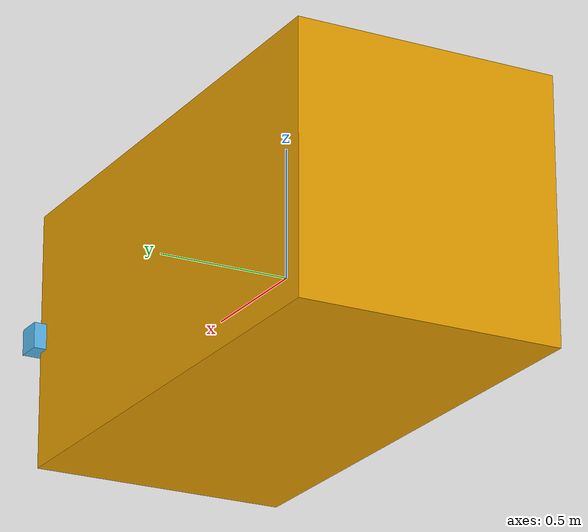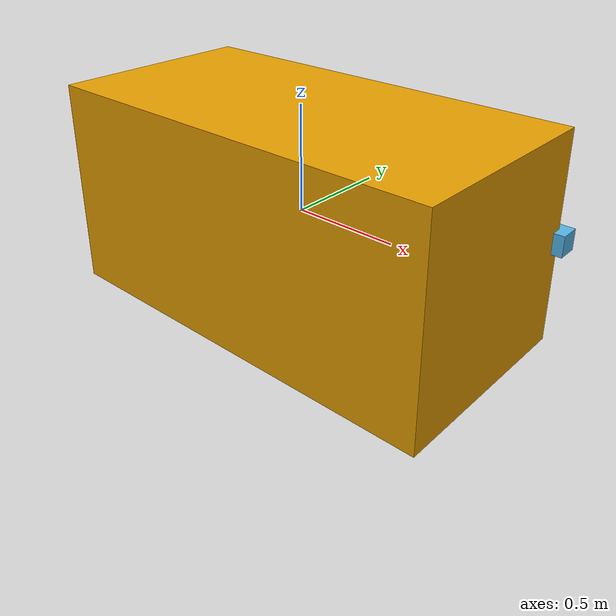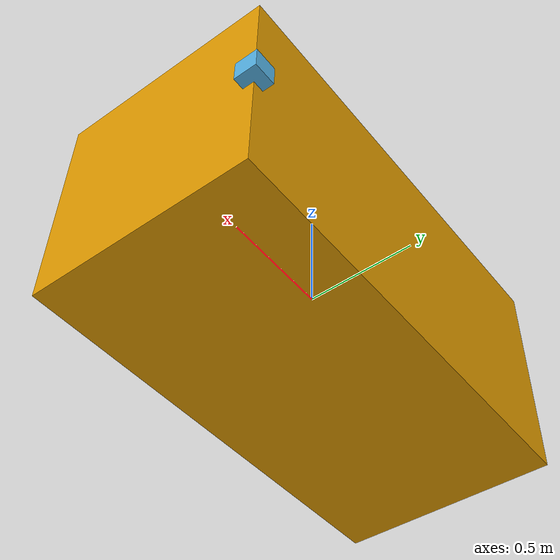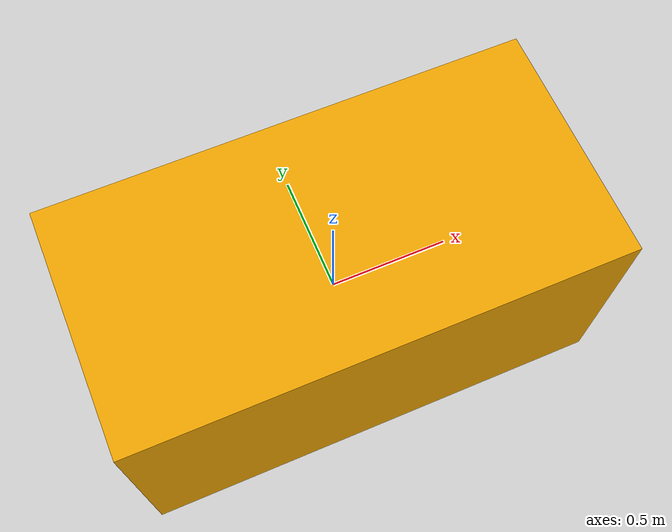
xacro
<?xml version="1.0"?>

<robot name="bumper_test" xmlns:xacro="http://ros.org/wiki/xacro">
  <xacro:macro name="box_inertial" params="x y z mass *origin">
    <inertial>
      <mass value="${mass}" />
      <xacro:insert_block name="origin" />
      <inertia ixx="${0.0833333 * mass * (y*y + z*z)}" ixy="0.0" ixz="0.0"
        iyy="${0.0833333 * mass * (x*x + z*z)}" iyz="0.0"
        izz="${0.0833333 * mass * (x*x + y*y)}" />
    </inertial>
  </xacro:macro>
  <link name="chassis">
    <xacro:box_inertial x="2" y="1" z="1" mass="100">
      <origin xyz="0  0 0" rpy="0 0 0" />
    </xacro:box_inertial>
    <visual>
      <geometry>
        <box size="2 1 1" />
      </geometry>
    </visual>
    <collision name="chassis_collision">
      <geometry>
        <box size="2 1 1" />
      </geometry>
    </collision>
  </link>
  <link name="bumper0">
    <visual>
      <geometry>
        <box size="0.1 0.1 0.1" />
      </geometry>
    </visual>
    <collision name="bumper0_collision">
      <geometry>
        <box size="0.1 0.1 0.1" />
      </geometry>
    </collision>
  </link>
  <joint name="chassis_bumper_joint" type="fixed">
    <parent link="chassis" />
    <child link="bumper0" />
    <origin xyz="1  0.5 0" rpy="0 0 0" />
    <axis xyz="0 1 0" />
  </joint>

  <gazebo reference="bumper0">
    <sensor name="bumper0_sensor" type="contact">
      <always_on>true</always_on>
      <update_rate>30</update_rate>
      <contact>
        <collision>bumper0_collision</collision>
      </contact>
      <plugin name="bumper0_plugin" filename="libgazebo_ros_bumper.so">
        <bumperTopicName>bumper0_sensor_state</bumperTopicName>
        <frameName>bumper0</frameName>
      </plugin>
    </sensor>
  </gazebo>
</robot>
